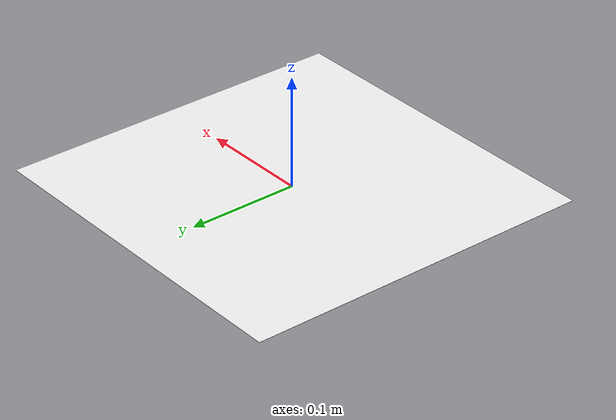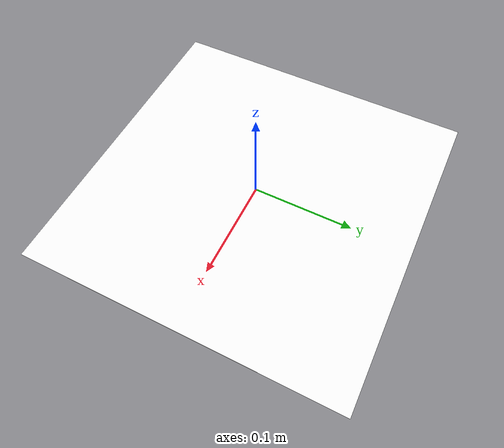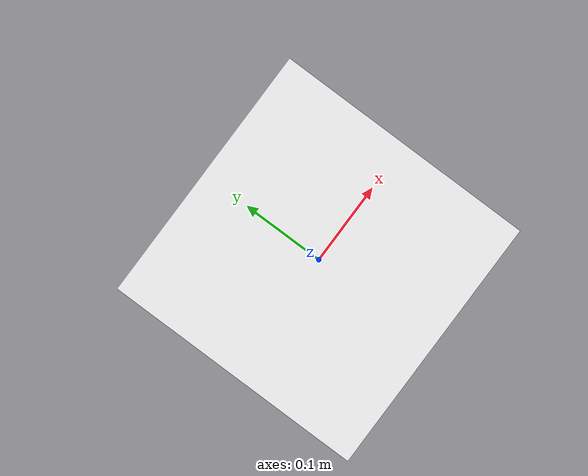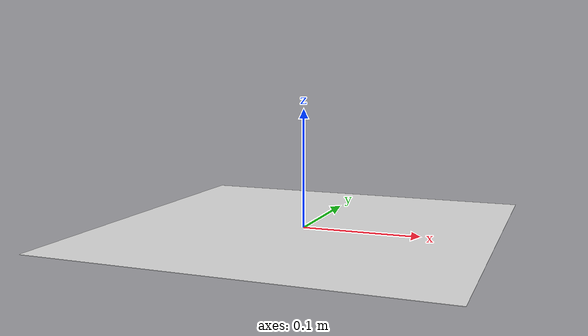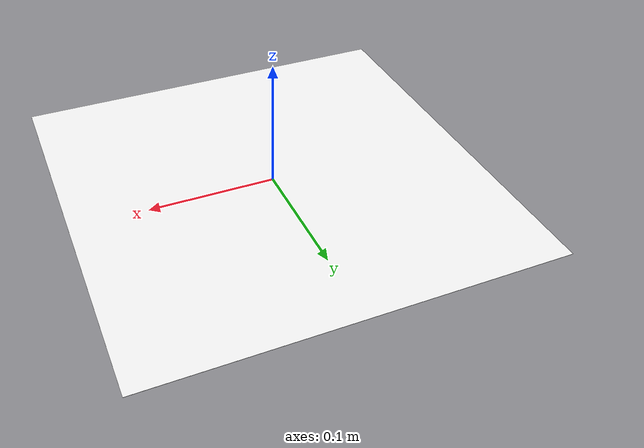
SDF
<?xml version="1.0" encoding="UTF-8"?>
<sdf version='1.9'>
  <model name='aruco_marker_id1'>
    <static>true</static>
    <pose>0 0 0.001 0 0 0</pose>
    <link name='base'>
      <visual name='base_visual'>
        <geometry>
          <plane>
            <normal>0 0 1</normal>
            <size>0.32 0.32</size>
          </plane>
        </geometry>
        <material>
          <diffuse>1 1 1 1</diffuse>
          <specular>0.4 0.4 0.4 1</specular>
          <pbr>
            <metal>
              <albedo_map>model://aruco_marker_id1/aruco_marker_id1.png</albedo_map>
            </metal>
          </pbr>
        </material>
      </visual>
    </link>
  </model>
</sdf>
